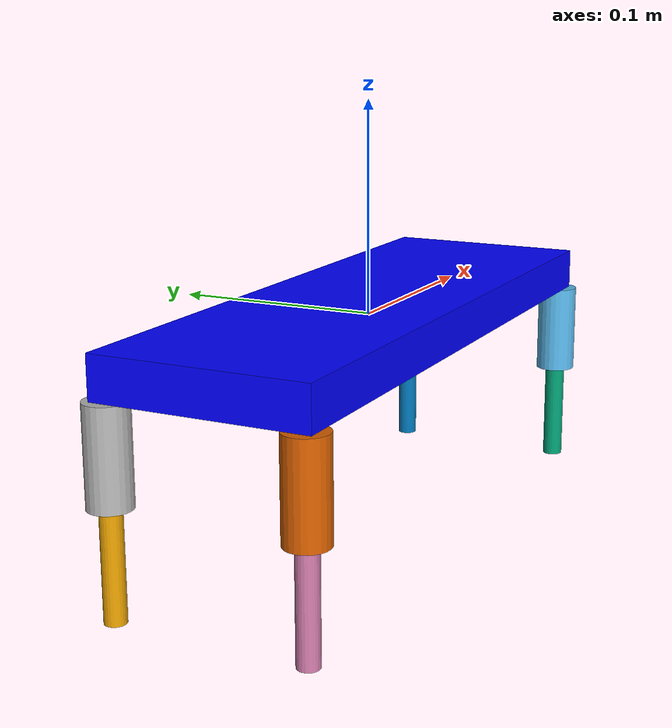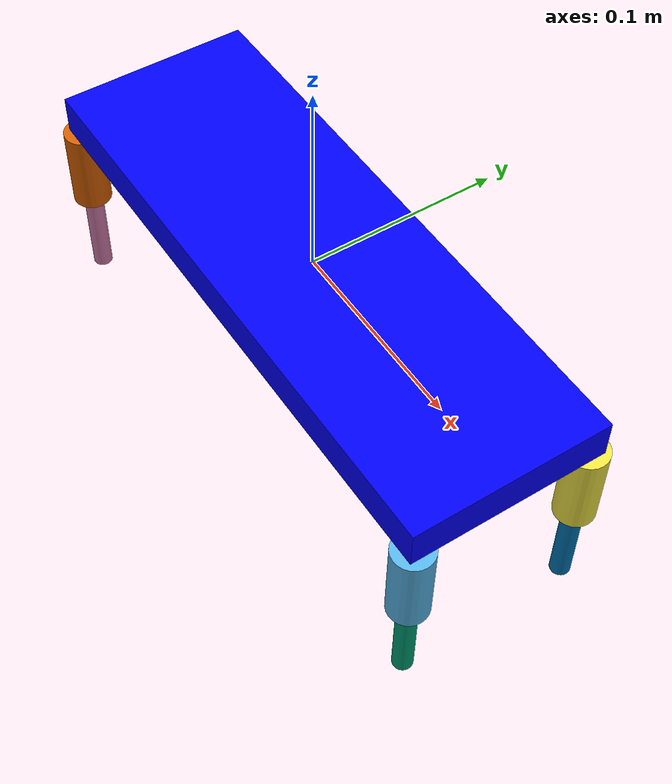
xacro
<?xml version="1.0"?>
<robot name="quadruped_leg"  xmlns:xacro="http://www.ros.org/wiki/xacro">

  <xacro:include filename="$(find spotmini)/urdf/trans.urdf.xacro"/>

  <material name="red">
    <color rgba="1.0 0.0 0.0 1.0"/>
  </material>
 <material name="green">
    <color rgba="0.0 1.0 0.0 1.0"/>
</material>
<material name="blue">
    <color rgba="0.0 0.0 1.0 1.0"/>
</material>
<material name="white">
    <color rgba="1 1.0 1.0 1.0"/>
</material>

  <link name="base_link">
    <visual>
      <geometry>
        <box size="0.3 0.1 0.02"/>
        <origin xyz = "0 0 0.01" rpy =" 0 0 1.0"/>
      </geometry>
      <material name="blue"/>

    </visual>

    <inertial>
         <origin xyz="0 0 0.01" rpy="0 0 1.0"/>
         <mass value="1"/>
         <inertia ixx="0.11"  ixy="0"  ixz="0.0" iyy= "0.04" iyz="0" izz="0.02" />
       </inertial>
     <collision>
        <origin xyz = "0 0 1.50" rpy="0 0 0"/>
        <geometry>
          <box size="0.3 0.1 0.02"/>
        </geometry>
    </collision>
  </link>

  <link name="upperleg_M1_link">
    <visual>
      <geometry>
        <cylinder length="0.045" radius="0.01"/>
      </geometry>
      <origin rpy="0 0 0" xyz="0 0 -0.0225"/>
    </visual>

    <inertial>
        <origin rpy="0 0 0" xyz="0 0 -0.0225"/>
        <mass value="1"/>
         <inertia ixx="0.11"  ixy="0"  ixz="0.0" iyy= "0.04" iyz="0" izz="0.02" />
      </inertial>
     <collision>
        <origin rpy="0 0 0" xyz="0 0 -0.0225"/>
        <geometry>
          <cylinder length="0.045" radius="0.01"/>
        </geometry>
    </collision>
  </link>

  <joint name="base_upperlegM1_joint" type="revolute">
    <axis xyz="0 1 0"/>
    <limit effort="10.0" lower="-0.39" upper="0.39" velocity="1.0"/>
    <parent link="base_link"/>
    <child link="upperleg_M1_link"/>
    <origin xyz="0.145 -0.045 -0.01"/>
  </joint>

  <link name="lowerleg_M1_link">
    <visual>
      <geometry>
        <cylinder length="0.05" radius="0.005"/>
      </geometry>
      <origin rpy="0 0 0" xyz="0 0 -0.025"/>
    </visual>

    <inertial>
        <origin rpy="0 0 0" xyz="0 0 -0.025"/>
        <mass value="1"/>
         <inertia ixx="0.11"  ixy="0"  ixz="0.0" iyy= "0.04" iyz="0" izz="0.02" />
      </inertial>
     <collision>
        <origin rpy="0 0 0" xyz="0 0 -0.025"/>
        <geometry>
          <cylinder length="0.05" radius="0.005"/>
        </geometry>
    </collision>
  </link>

  <joint name="upperlegM1_lowerlegM1_joint" type="revolute">
    <axis xyz="0 1 0"/>
    <limit effort="10.0" lower="-0.39" upper="0.40" velocity="1.0"/>
    <parent link="upperleg_M1_link"/>
    <child link="lowerleg_M1_link"/>
    <origin xyz="0 0 -0.045"/>
  </joint>

  <link name="upperleg_M2_link">
    <visual>
      <geometry>
        <cylinder length="0.045" radius="0.01"/>
      </geometry>
      <origin rpy="0 0 0" xyz="0 0 -0.0225"/>
    </visual>
    <inertial>
        <origin rpy="0 0 0" xyz="0 0 -0.0225"/>
        <mass value="1"/>
         <inertia ixx="0.11"  ixy="0"  ixz="0.0" iyy= "0.04" iyz="0" izz="0.02" />
      </inertial>
     <collision>
        <origin rpy="0 0 0" xyz="0 0 -0.0225"/>
        <geometry>
          <cylinder length="0.045" radius="0.01"/>
        </geometry>
    </collision>
  </link>

  <joint name="base_upperlegM2_joint" type="revolute">
    <axis xyz="0 1 0"/>
    <limit effort="10.0" lower="-1.57075" upper="1.57075" velocity="1.0"/>
    <parent link="base_link"/>
    <child link="upperleg_M2_link"/>
     <origin xyz="0.145 0.045 -0.01"/>
  </joint>

  <link name="lowerleg_M2_link">
    <visual>
      <geometry>
        <cylinder length="0.05" radius="0.005"/>
      </geometry>
      <origin rpy="0 0 0" xyz="0 0 -0.025"/>
    </visual>
    <inertial>
        <origin rpy="0 0 0" xyz="0 0 -0.025"/>
        <mass value="1"/>
         <inertia ixx="0.11"  ixy="0"  ixz="0.0" iyy= "0.04" iyz="0" izz="0.02" />
      </inertial>
     <collision>
        <origin rpy="0 0 0" xyz="0 0 -0.025"/>
        <geometry>
          <cylinder length="0.05" radius="0.005"/>
        </geometry>
    </collision>

  </link>

  <joint name="upperlegM2_lowerlegM2_joint" type="revolute">
    <axis xyz="0 1 0"/>
    <limit effort="1.0" lower="-0.39" upper="0.39" velocity="1"/>
    <parent link="upperleg_M2_link"/>
    <child link="lowerleg_M2_link"/>
    <origin xyz="0 0 -0.045"/>
  </joint>

  <link name="upperleg_M3_link">
    <visual>
      <geometry>
        <cylinder length="0.045" radius="0.01"/>
      </geometry>
      <origin rpy="0 0 0" xyz="0 0 -0.0225"/>
    </visual>
    <inertial>
        <origin rpy="0 0 0" xyz="0 0 -0.0225"/>
        <mass value="1"/>
         <inertia ixx="0.11"  ixy="0"  ixz="0.0" iyy= "0.04" iyz="0" izz="0.02" />
      </inertial>
     <collision>
        <origin rpy="0 0 0" xyz="0 0 -0.0225"/>
        <geometry>
          <cylinder length="0.045" radius="0.01"/>
        </geometry>
    </collision>

  </link>

  <joint name="base_upperlegM3_joint" type="revolute">
    <axis xyz="0 1 0"/>
    <limit effort="10.0" lower="-0.39" upper="0.39"  velocity="1.0"/>
    <parent link="base_link"/>
    <child link="upperleg_M3_link"/>
    <origin xyz="-0.145 -0.045 -0.01"/>
  </joint>

  <link name="lowerleg_M3_link">
    <visual>
      <geometry>
        <cylinder length="0.05" radius="0.005"/>
      </geometry>
      <origin rpy="0 0 0" xyz="0 0 -0.025"/>
    </visual>

    <inertial>
        <origin rpy="0 0 0" xyz="0 0 -0.025"/>
        <mass value="1"/>
         <inertia ixx="0.11"  ixy="0"  ixz="0.0" iyy= "0.04" iyz="0" izz="0.02" />
      </inertial>
     <collision>
        <origin rpy="0 0 0" xyz="0 0 -0.025"/>
        <geometry>
          <cylinder length="0.05" radius="0.005"/>
        </geometry>
    </collision>

  </link>
  <joint name="upperlegM3_lowerlegM3_joint" type="revolute">
    <axis xyz="0 1 0"/>
    <limit effort="10.0"  lower="-0.39" upper="0.39" velocity="1.0"/>
    <parent link="upperleg_M3_link"/>
    <child link="lowerleg_M3_link"/>
    <origin xyz="0 0 -0.045"/>
  </joint>

  <link name="upperleg_M4_link">
    <visual>
      <geometry>
        <cylinder length="0.045" radius="0.01"/>
      </geometry>
      <origin rpy="0 0 0" xyz="0 0 -0.0225"/>
    </visual>

    <inertial>
        <origin rpy="0 0 0" xyz="0 0 -0.0225"/>
        <mass value="1"/>
         <inertia ixx="0.11"  ixy="0"  ixz="0.0" iyy= "0.04" iyz="0" izz="0.02" />
      </inertial>
     <collision>
        <origin rpy="0 0 0" xyz="0 0 -0.0225"/>
        <geometry>
          <cylinder length="0.045" radius="0.01"/>
        </geometry>
    </collision>

  </link>

  <joint name="base_upperlegM4_joint" type="revolute">
    <axis xyz="0 1 0"/>
    <limit effort="10.0" lower="-0.39" upper="0.39" velocity="1.0"/>
    <parent link="base_link"/>
    <child link="upperleg_M4_link"/>
    <origin xyz="-0.145 0.045 -0.01"/>
  </joint>

  <link name="lowerleg_M4_link">
    <visual>
      <geometry>
        <cylinder length="0.05" radius="0.005"/>
      </geometry>
      <origin rpy="0 0 0" xyz="0 0 -0.025"/>
    </visual>
    <inertial>
        <origin rpy="0 0 0" xyz="0 0 -0.025"/>
        <mass value="1"/>
         <inertia ixx="0.11"  ixy="0"  ixz="0.0" iyy= "0.04" iyz="0" izz="0.02" />
      </inertial>
     <collision>
        <origin rpy="0 0 0" xyz="0 0 -0.025"/>
        <geometry>
          <cylinder length="0.05" radius="0.005"/>
        </geometry>
    </collision>
  </link>

  <joint name="upperlegM4_lowerlegM4_joint" type="revolute">
    <axis xyz="0 1 0"/>
    <limit effort="10.0" lower="-0.39" upper="0.39" velocity="1.0"/>
    <parent link="upperleg_M4_link"/>
    <child link="lowerleg_M4_link"/>
    <origin xyz="0 0 -0.045"/>
  </joint>

</robot>
